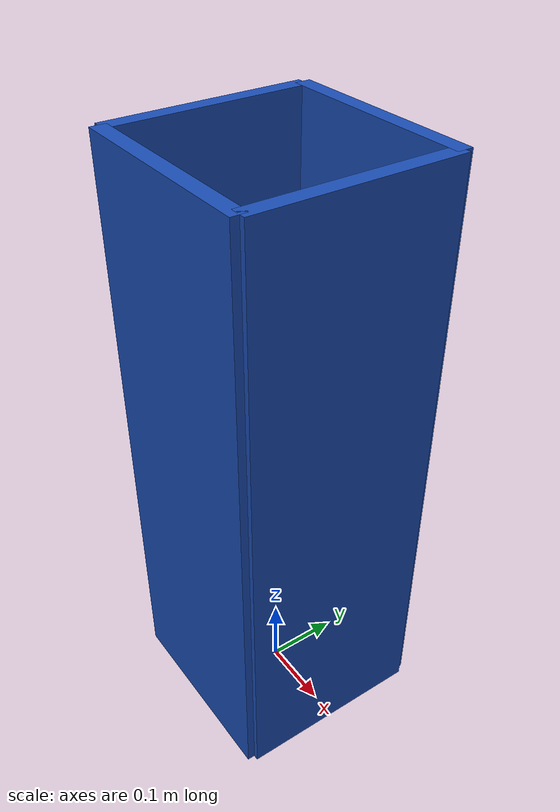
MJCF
<mujoco model="recycle_bin">
  <compiler angle="radian"/>

  <asset>
    <material name="bin_blue" rgba="0.1 0.3 0.7 1" specular="0.3" shininess="0.5"/>
  </asset>

  <worldbody>
    <!-- Bin is centered at its base, walls extend upward -->
    <!-- Height: 0.80m (floor-standing, reachable by robot) -->
    <body name="recycle_bin" pos="0 0 0">
      <freejoint name="recycle_bin_joint"/>
      <!-- Bottom -->
      <geom name="bin_bottom" type="box" size="0.122 0.122 0.003" pos="0 0 0.003"
            material="bin_blue" friction="0.8 0.01 0.001" contype="1" conaffinity="1"/>
      <!-- Front wall (2cm thick, inner edge at y=0.119) -->
      <geom name="bin_front" type="box" size="0.132 0.01 0.397" pos="0 0.129 0.40"
            material="bin_blue" friction="0.8 0.01 0.001" contype="1" conaffinity="1"/>
      <!-- Back wall (2cm thick, inner edge at y=-0.119) -->
      <geom name="bin_back" type="box" size="0.132 0.01 0.397" pos="0 -0.129 0.40"
            material="bin_blue" friction="0.8 0.01 0.001" contype="1" conaffinity="1"/>
      <!-- Left wall (2cm thick, inner edge at x=-0.119) -->
      <geom name="bin_left" type="box" size="0.01 0.129 0.397" pos="-0.129 0 0.40"
            material="bin_blue" friction="0.8 0.01 0.001" contype="1" conaffinity="1"/>
      <!-- Right wall (2cm thick, inner edge at x=0.119) -->
      <geom name="bin_right" type="box" size="0.01 0.129 0.397" pos="0.129 0 0.40"
            material="bin_blue" friction="0.8 0.01 0.001" contype="1" conaffinity="1"/>
    </body>
  </worldbody>
</mujoco>
